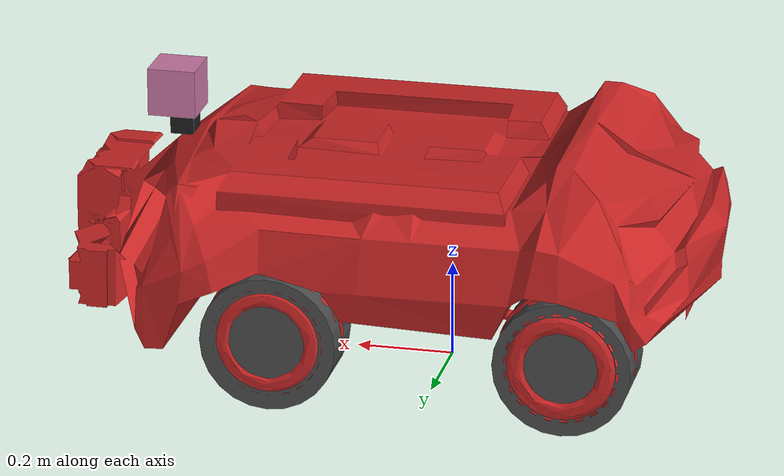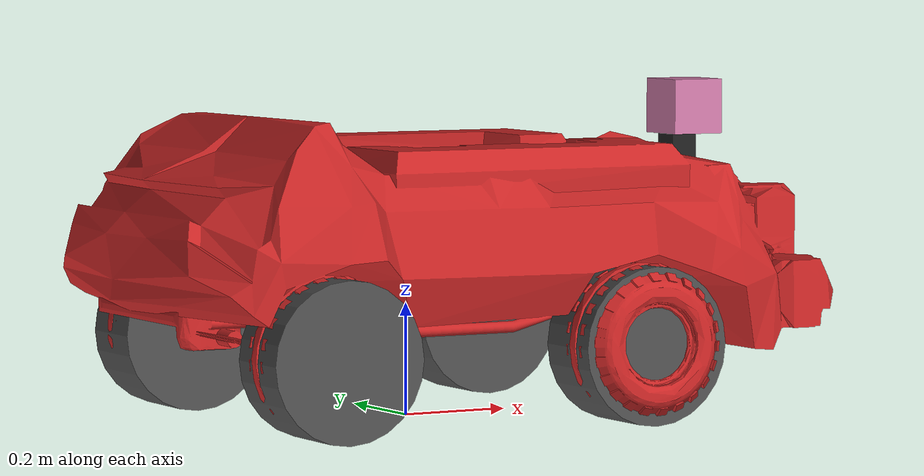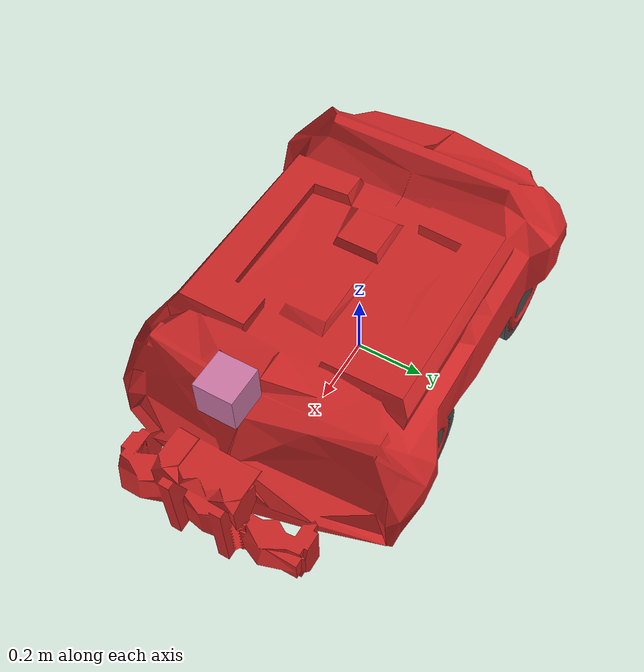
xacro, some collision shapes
<?xml version="1.0"?>
<robot name="chugv" xmlns:xacro="http://www.ros.org/wiki/xacro">

  <!-- Included URDF/XACRO Files -->
  <xacro:include filename="$(find chugv_description)/urdf/materials.urdf.xacro" />
  <xacro:include filename="$(find chugv_description)/urdf/wheel.urdf.xacro" />

  <!-- PROPERTY LIST -->
  <!--All units in m-kg-s-radians unit system -->
  <property name="M_PI" value="3.1415926535897931" />

  <!-- Main Body-base -->
  <property name="base_x_size" value="1" />
  <property name="base_y_size" value="0.5" />
  <property name="base_z_size" value="0.25" />
  <property name="base_mass" value="35" /> <!-- in kg-->

  <property name="camera_link" value="0.05" /> <!-- Size of square 'camera' box -->

  <!-- Sensors - Hokuyo -->
  <!--property name="height3" value="1" /-->
  <property name="axel_offset" value="0.15" />

  <!--Inertial macros for the box and cylinder. Units are kg*m^2-->
  <macro name="box_inertia" params="m x y z">
    <inertia  ixx="${m*(y*y+z*z)/12}" ixy = "0" ixz = "0"
              iyy="${m*(x*x+z*z)/12}" iyz = "0"
              izz="${m*(x*x+z*z)/12}" />
  </macro>

  <!-- BASE-FOOTPRINT -->
  <!-- base_footprint is a fictitious link(frame) that is on the ground right below base_link origin -->
  <link name="base_footprint">
    <visual>
        <origin xyz="0 0 0" rpy="0 0 0" />
        <geometry>
            <box size="0.001 0.001 0.001" />
        </geometry>
    </visual>
  </link>

  <gazebo reference="base_footprint">
    <turnGravityOff>false</turnGravityOff>
  </gazebo>

  <joint name="base_footprint_joint" type="fixed">
  <origin xyz="0 0 ${wheel_radius - base_z_origin_to_wheel_origin}" rpy="0 0 0" />
    <parent link="base_footprint"/>
    <child link="base_link" />
  </joint>

  <!-- BASE-LINK -->
  <!--Actual body/chassis of the robot-->
  <link name="base_link">
    <inertial>
      <mass value="${base_mass}" />
      <origin xyz="0 0 0" />
      <!--The 3x3 rotational inertia matrix. -->
      <box_inertia  m="${base_mass}" x="${base_x_size}" y="${base_y_size}" z="${base_z_size}"/>
    </inertial>
    <visual>
      <!--origin xyz="0 0 0" rpy="0 0 0" /-->
      <origin xyz="0.05 0 -0.095" rpy="0 0 0" />
      <geometry>
      <mesh filename="package://chugv_description/meshes/chugv.dae"/>
        <!--box size="${base_x_size} ${base_y_size} ${base_z_size}"/-->
      </geometry>
      <material name="Red" /> <!-- Yellow -->
    </visual>
    <collision>
      <!--origin xyz="0 0 0" rpy="0 0 0" /-->
      <!--origin xyz="0 0 0.17" rpy="0 0 0 " /-->
      <origin xyz="0.08 0 -0.095" rpy="0 0 0" />
      <geometry>
<mesh filename="package://chugv_description/meshes/chugv_coll.dae"/>
        <!--box size="${base_x_size} ${base_y_size} ${base_z_size}"/-->
      </geometry>
    </collision>
  </link>
  <gazebo reference="base_link">
    <material>Gazebo/Red</material> 	<!-- Yellow -->
    <turnGravityOff>false</turnGravityOff>
  </gazebo>

  <!-- WHEELs -->
  <wheel fb="front" lr="right" parent="base_link" translateX="1" translateY="-1" flipY="-1"/>
  <wheel fb="front" lr="left" parent="base_link" translateX="1" translateY="1" flipY="-1"/>
  <wheel fb="back" lr="right" parent="base_link" translateX="-1" translateY="-1" flipY="-1"/>
  <wheel fb="back" lr="left" parent="base_link" translateX="-1" translateY="1" flipY="-1"/>

<!-- sensor -->

  <joint name="hokuyo_joint" type="fixed">
    <axis xyz="0 1 0" />
    <origin xyz="0.58 0 ${base_z_size + axel_offset}" rpy="0 0 0"/>
    <parent link="base_link"/>
    <child link="hokuyo_link"/>
  </joint>

  <!-- Hokuyo Laser -->
  <link name="hokuyo_link">
    <collision>
      <origin xyz="0 0 0" rpy="0 0 0"/>
      <geometry>
    	<box size="0.1 0.1 0.1"/>
      </geometry>
    </collision>

    <visual>
      <origin xyz="0 0 0" rpy="0 0 0"/>
      <geometry>
        <mesh filename="package://chugv_description/meshes/sensors/hokuyo.dae"/>
      </geometry>
    </visual>

    <inertial>
      <mass value="1e-5" />
      <origin xyz="0 0 0" rpy="0 0 0"/>
      <inertia ixx="1e-6" ixy="0" ixz="0" iyy="1e-6" iyz="0" izz="1e-6" />
    </inertial>
  </link>

  <!-- hokuyo -->
  <gazebo reference="hokuyo_link">
    <sensor type="ray" name="head_hokuyo_sensor">
      <pose>0 0 0 0 0 0</pose>
      <visualize>true</visualize>
      <update_rate>40</update_rate>
      <ray>
        <scan>
          <horizontal>
            <samples>720</samples>
            <resolution>1</resolution>
            <min_angle>-2</min_angle>
            <max_angle>2</max_angle>
          </horizontal>
        </scan>
        <range>
          <min>0.10</min>
          <max>30.0</max>
          <resolution>0.01</resolution>
        </range>
        <noise>
          <type>gaussian</type>
          <mean>0.0</mean>
          <stddev>0.01</stddev>
        </noise>
      </ray>
      <plugin name="gazebo_ros_head_hokuyo_controller" filename="libgazebo_ros_laser.so">
        <topicName>base_scan</topicName>
        <frameName>laser_link</frameName>
      </plugin>

    </sensor>
  </gazebo>

<!-- Kinect -->

  <!-- Camera -->
  <joint name="camera_joint" type="fixed">
    <axis xyz="0 1 0" />
    <origin xyz="${base_x_size/2-camera_link/2+0.09} 0 ${base_z_size/2 + camera_link/2+0.18}" rpy="0 0 0"/>
    <parent link="base_link"/>
    <child link="camera_link"/>
  </joint>

  <link name="camera_link">
    <collision>
      <origin xyz="0 0 0" rpy="0 0 0"/>
      <geometry>
		<box size="${camera_link} ${camera_link} ${camera_link}"/>
      </geometry>
    </collision>

    <visual>
      <origin xyz="0 0 0" rpy="0 0 0"/>
      <geometry>
		<box size="${camera_link} ${camera_link} ${camera_link}"/>
      </geometry>
      <material name="black"/>
    </visual>

    <inertial>
      <mass value="1e-5" />
      <origin xyz="0 0 0" rpy="0 0 0"/>
      <inertia ixx="1e-6" ixy="0" ixz="0" iyy="1e-6" iyz="0" izz="1e-6" />
    </inertial>
  </link>

  <gazebo>
<!-- Control Mobile Robot -->
    <plugin name="skid_steer_drive_controller" filename="libgazebo_ros_skid_steer_drive.so">
      <alwaysOn>true</alwaysOn>
      <updateRate>100.0</updateRate>
      <leftFrontJoint>front_left_wheel_joint</leftFrontJoint>
      <rightFrontJoint>front_right_wheel_joint</rightFrontJoint>
      <leftRearJoint>back_left_wheel_joint</leftRearJoint>
      <rightRearJoint>back_right_wheel_joint</rightRearJoint>
      <wheelSeparation>${base_y_size}</wheelSeparation>
      <wheelDiameter>${2*wheel_radius}</wheelDiameter>
      <torque>35</torque>
      <broadcastTF>1</broadcastTF>
      <odometryFrame>odom</odometryFrame>
      <commandTopic>cmd_vel</commandTopic>
      <odometryTopic>odom</odometryTopic>
      <robotBaseFrame>base_footprint</robotBaseFrame>
    </plugin>
<!-- A plugin for control robot - The basic control -->
<plugin name="gazebo_ros_control" filename="libgazebo_ros_control.so" />

      <plugin name="p3d_base_controller" filename="libgazebo_ros_p3d.so">
		<alwaysOn>true</alwaysOn>
		<updateRate>100.0</updateRate>
		<bodyName>base_link</bodyName>
		<topicName>base_pose_ground_truth</topicName>
		<gaussianNoise>0</gaussianNoise>
		<frameName>/map</frameName>
		<xyzOffsets>0 0 0</xyzOffsets>
		<rpyOffsets>0 0 0</rpyOffsets>
      </plugin>

</gazebo>

  <gazebo reference="camera_link">
    <sensor type="camera" name="camera1">
      <update_rate>30.0</update_rate>
      <camera name="head">
        <horizontal_fov>1.3962634</horizontal_fov>
        <image>
          <width>800</width>
          <height>800</height>
          <format>R8G8B8</format>
        </image>
        <clip>
          <near>0.02</near>
          <far>300</far>
        </clip>
        <noise>
          <type>gaussian</type>
          <!-- Noise is sampled independently per pixel on each frame.
               That pixel's noise value is added to each of its color
               channels, which at that point lie in the range [0,1]. -->
          <mean>0.0</mean>
          <stddev>0.007</stddev>
        </noise>
      </camera>
      <plugin name="camera_controller" filename="libgazebo_ros_camera.so">
        <alwaysOn>true</alwaysOn>
        <updateRate>0.0</updateRate>
        <cameraName>chugv/camera</cameraName>
        <imageTopicName>image_raw</imageTopicName>
        <cameraInfoTopicName>camera_info</cameraInfoTopicName>
        <frameName>camera_link</frameName>
        <hackBaseline>0.07</hackBaseline>
        <distortionK1>0.0</distortionK1>
        <distortionK2>0.0</distortionK2>
        <distortionK3>0.0</distortionK3>
        <distortionT1>0.0</distortionT1>
        <distortionT2>0.0</distortionT2>
      </plugin>
    </sensor>
  </gazebo>

</robot>

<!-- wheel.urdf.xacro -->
<robot name="wheel" xmlns:xacro="http://www.ros.org/wiki/xacro">

  <!-- Wheels -->
  <property name="wheel_radius" value="0.14" />
  <property name="wheel_height" value="0.14" />
  <property name="wheel_mass" value="2.5" /> <!-- in kg-->

  <property name="base_x_origin_to_wheel_origin" value="0.3" />
<!-- ORIGIN 0.25 0.3 0.0-->
  <property name="base_y_origin_to_wheel_origin" value="0.3" />
  <property name="base_z_origin_to_wheel_origin" value="0.0" />

  <macro name="cylinder_inertia" params="m r h">
    <inertia  ixx="${m*(3*r*r+h*h)/12}" ixy = "0" ixz = "0"
              iyy="${m*(3*r*r+h*h)/12}" iyz = "0"
              izz="${m*r*r/2}" />
  </macro>

  <xacro:macro name="wheel" params="fb lr parent translateX translateY flipY"> <!--fb : front, back ; lr: left, right -->
    <link name="${fb}_${lr}_wheel">
      <visual>
        <origin xyz="0 0 0" rpy="${flipY*M_PI/2} 0 0" />
        <geometry>
          <cylinder length="${wheel_height}" radius="${wheel_radius}" />
        </geometry>
        <material name="DarkGray" />
      </visual>
      <collision>
        <origin xyz="0 0 0" rpy="${flipY*M_PI/2} 0 0" />
        <geometry>
          <cylinder length="${wheel_height}" radius="${wheel_radius}" />
        </geometry>
      </collision>
      <inertial>
        <mass value="${wheel_mass}" />
        <origin xyz="0 0 0" />
        <cylinder_inertia  m="${wheel_mass}" r="${wheel_radius}" h="${wheel_height}" />
      </inertial>
    </link>

    <gazebo reference="${fb}_${lr}_wheel">
      <mu1 value="1.0"/>
      <mu2 value="1.0"/>
      <kp  value="10000000.0" />
      <kd  value="1.0" />
      <fdir1 value="1 0 0"/>
      <material>Gazebo/Grey</material>
      <turnGravityOff>false</turnGravityOff>
    </gazebo>

    <joint name="${fb}_${lr}_wheel_joint" type="continuous">
      <parent link="${parent}"/>
      <child link="${fb}_${lr}_wheel"/>
      <origin xyz="${translateX * base_x_origin_to_wheel_origin} ${translateY * base_y_origin_to_wheel_origin} ${base_z_origin_to_wheel_origin}" rpy="0 0 0" />
      <axis xyz="0 1 0" rpy="0 0 0" />
      <limit effort="100" velocity="100"/>
      <joint_properties damping="0.0" friction="0.0"/>
    </joint>

    <!-- Transmission is important to link the joints and the controller -->
    <transmission name="${fb}_${lr}_wheel_joint_trans">
      <type>transmission_interface/SimpleTransmission</type>
      <joint name="${fb}_${lr}_wheel_joint" />
      <actuator name="${fb}_${lr}_wheel_joint_motor">
        <hardwareInterface>EffortJointInterface</hardwareInterface>
        <mechanicalReduction>1</mechanicalReduction>
      </actuator>
    </transmission>

  </xacro:macro>
</robot>
